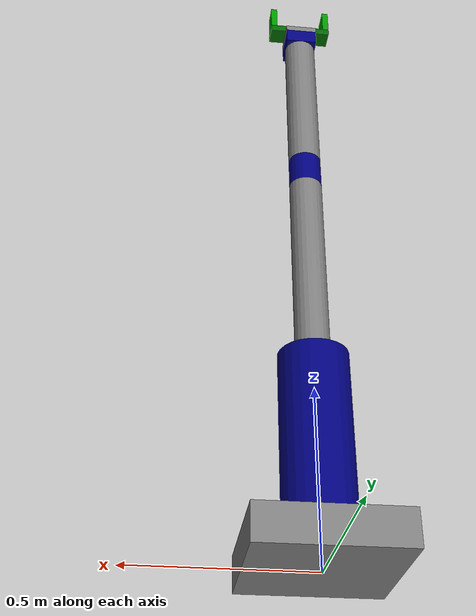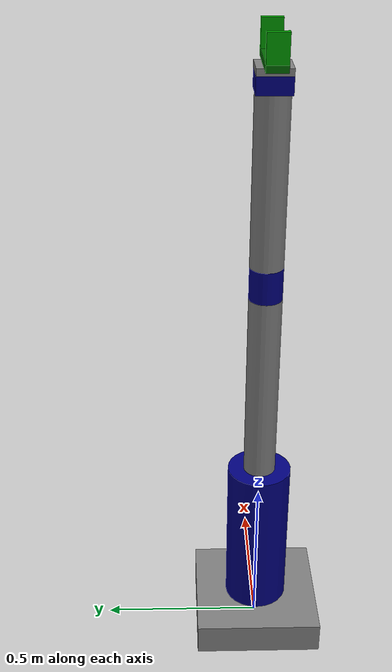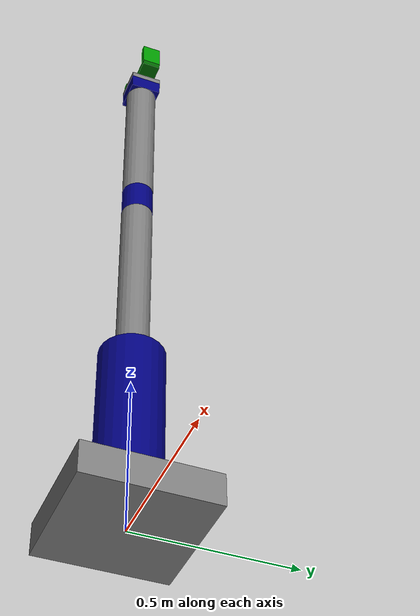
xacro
<?xml version="1.0"?>
<robot xmlns:xacro="http://www.ros.org/wiki/xacro" name="robotic_arm">
    <xacro:arg name="initial_positions_file" default="initial_positions.yaml" />

    <!-- Import robotic_arm urdf file -->
    <xacro:include filename="$(find robotic_arm_description)/urdf/main_robotic_arm.urdf.xacro" />

    <!-- Import control_xacro -->
    <xacro:include filename="robotic_arm.ros2_control.xacro" />

    <xacro:robotic_arm_ros2_control name="FakeSystem" initial_positions_file="$(arg initial_positions_file)"/>

</robot>

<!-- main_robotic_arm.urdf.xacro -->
<robot  name= "robotic_arm" xmlns:xacro="http://www.ros.org/wiki/xacro">
   <xacro:include filename="common_properties.xacro" />
   <xacro:include filename="robotic_arm.xacro" />
   <xacro:include filename="gripper.xacro" />

   <joint name="arm_gripper_joint" type="fixed">
      <parent link="tool_link" />
      <child link="gripper_base_link" />
      <origin xyz="0 0 0" rpy="0 0 0" />
   </joint>

</robot>

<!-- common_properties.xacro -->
<robot xmlns:xacro="http://www.ros.org/wiki/xacro">
    <material name="grey">
        <color rgba="0.5 0.5 0.5 1" />
    </material>

    <material name="blue">
        <color rgba="0 0 0.5 1" />
    </material>

    <material name="dark_green">
        <color rgba="0 0.4 0 1" />
    </material>

    <material name="light_green">
        <color rgba="0 0.6 0 1" />
    </material>
</robot>

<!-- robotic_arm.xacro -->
<robot xmlns:xacro="http://www.ros.org/wiki/xacro">

    <link name = "base_link">
        <visual>
            <geometry>
                <box size="0.4 0.4 0.1" />
            </geometry>
            <origin xyz = "0 0 0.05" rpy = "0 0 0" />
            <material name="grey"/>
        </visual>
        <collision>
            <geometry>
                <box size="0.4 0.4 0.1" />
            </geometry>
            <origin xyz = "0 0 0.05" rpy = "0 0 0" />
        </collision>

    </link>

    <link name = "shoulder_link">
        <visual>
            <geometry>
                <cylinder radius="0.1" length="0.5" />
            </geometry>
            <origin xyz = "0 0 0.25" rpy = "0 0 0" />
            <material name="blue"/>
        </visual>
        <collision>
            <geometry>
                <box size="0.2 0.2 0.5" />
            </geometry>
            <origin xyz = "0 0 0.25" rpy = "0 0 0" />
        </collision>
    </link>

    <link name = "arm_link">
        <visual>
            <geometry>
                <cylinder radius="0.05" length="0.6" />
            </geometry>
            <origin xyz = "0 0 0.3" rpy = "0 0 0" />
            <material name="grey"/>
        </visual>
        <collision>
            <geometry>
                <box size="0.1 0.1 0.6" />
            </geometry>
            <origin xyz = "0 0 0.3" rpy = "0 0 0" />
        </collision>
    </link>

    <link name = "elbow_link" >
        <visual>
            <geometry>
                <cylinder radius="0.05" length="0.1" />
            </geometry>
            <origin xyz = "0 0 0.05" rpy = "0 0 0" />
            <material name="blue"/>
        </visual>
        <collision>
            <geometry>
                <box size="0.1 0.1 0.1" />
            </geometry>
            <origin xyz = "0 0 0.05" rpy = "0 0 0" />
        </collision>
    </link>

    <link name = "forearm_link">
        <visual>
            <geometry>
                <cylinder radius="0.05" length="0.5" />
            </geometry>
            <origin xyz = "0 0 0.25" rpy = "0 0 0" />
            <material name="grey"/>
        </visual>
        <collision>
            <geometry>
                <box size="0.1 0.1 0.5" />
            </geometry>
            <origin xyz = "0 0 0.25" rpy = "0 0 0" />
        </collision>
    </link>

    <link name = "wrist_link">
        <visual>
            <geometry>
                <box size= "0.1 0.1 0.05" />
            </geometry>
            <origin xyz = "0 0 0.025" rpy = "0 0 0" />
            <material name="blue"/>
        </visual>
        <collision>
            <geometry>
                <box size= "0.1 0.1 0.05" />
            </geometry>
            <origin xyz = "0 0 0.025" rpy = "0 0 0" />
        </collision>
    </link>

    <link name = "hand_link">
        <visual>
            <geometry>
                <box size= "0.1 0.1 0.02" />
            </geometry>
            <origin xyz = "0 0 0.01" rpy = "0 0 0" />
            <material name="grey"/>
        </visual>
        <collision>
            <geometry>
                <box size= "0.1 0.1 0.02" />
            </geometry>
            <origin xyz = "0 0 0.01" rpy = "0 0 0" />
        </collision>
    </link>

    <link name = "tool_link">

    </link>

    <joint name = "base_shoulder_joint" type = "revolute">
        <parent link =  "base_link" />
        <child link = "shoulder_link" />
        <origin xyz  = "0 0 0.1" rpy="0 0 0"/>
        <axis xyz = "0 0 1" />
        <limit effort= "1000.0" velocity="1.0" lower= "-3.14" upper= "3.14" />
    </joint>

    <joint name = "shoulder_arm_joint" type = "revolute">
        <parent link =  "shoulder_link" />
        <child link = "arm_link" />
        <origin xyz  = "0 0 0.5" rpy="0 0 0"/>
        <axis xyz = "0 1 0" />
        <limit effort= "1000.0" velocity="1.0" lower= "0" upper= "2.5" />
    </joint>

    <joint name = "arm_elbow_joint" type = "revolute">
        <parent link =  "arm_link" />
        <child link = "elbow_link" />
        <origin xyz  = "0 0 0.6" rpy="0 0 0"/>
        <axis xyz = "0 1 0" />
        <limit effort= "1000.0" velocity="1.0" lower= "0" upper= "2.5" />
    </joint>

    <joint name = "elbow_forearm_joint" type = "revolute">
        <parent link =  "elbow_link" />
        <child link = "forearm_link" />
        <origin xyz  = "0 0 0.1" rpy="0 0 0"/>
        <axis xyz = "0 0 1" />
        <limit effort= "1000.0" velocity="1.0" lower= "-3.14" upper= "3.14" />
    </joint>

    <joint name = "forearm_wrist_joint" type = "revolute">
        <parent link =  "forearm_link" />
        <child link = "wrist_link" />
        <origin xyz  = "0 0 0.5" rpy="0 0 0"/>
        <axis xyz = "0 1 0" />
        <limit effort= "1000.0" velocity="1.0" lower= "-1.57" upper= "1.57" />
    </joint>

    <joint name = "wrist_hand_joint" type = "continuous">
        <parent link =  "wrist_link" />
        <child link = "hand_link" />
        <origin xyz  = "0 0 0.05" rpy="0 0 0"/>
        <axis xyz = "0 0 1" />
    </joint>

    <joint name = "hand_tool_joint" type = "fixed">
        <parent link =  "hand_link" />
        <child link = "tool_link" />
        <origin xyz  = "0 0 0.02" rpy="0 0 0"/>
    </joint>
</robot>

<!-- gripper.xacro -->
<robot xmlns:xacro="http://www.ros.org/wiki/xacro">

    <link name="gripper_base_link">
        <visual>
            <origin xyz="0 0 0.01" rpy="0 0 0" />
            <geometry>
                <box size="0.2 0.06 0.02" />
            </geometry>
            <material name="dark_green"/>
        </visual>
        <collision>
            <origin xyz="0 0 0.01" rpy="0 0 0" />
            <geometry>
                <box size="0.2 0.06 0.02" />
            </geometry>
        </collision>
    </link>

    <link name="gripper_left_finger_link">
        <visual>
            <origin xyz="0 0 0.05" rpy="0 0 0" />
            <geometry>
                <box size="0.02 0.06 0.08" />
            </geometry>
            <material name="light_green"/>
        </visual>
        <collision>
            <origin xyz="0 0 0.05" rpy="0 0 0" />
            <geometry>
                <box size="0.02 0.06 0.08" />
            </geometry>
        </collision>
    </link>

    <link name="gripper_right_finger_link">
        <visual>
            <origin xyz="0 0 0.05" rpy="0 0 0" />
            <geometry>
                <box size="0.02 0.06 0.08" />
            </geometry>
            <material name="light_green"/>
        </visual>
        <collision>
            <origin xyz="0 0 0.05" rpy="0 0 0" />
            <geometry>
                <box size="0.02 0.06 0.08" />
            </geometry>
        </collision>
    </link>

    <joint name="gripper_base_left_joint" type="prismatic">
        <parent link="gripper_base_link" />
        <child link="gripper_left_finger_link" />
        <origin xyz="-0.09 0 0.01" rpy="0 0 0" />
        <axis xyz="1 0 0" />
        <limit lower="0.0" upper="0.08" effort="1000.0" velocity="1.0" />
    </joint>

    <joint name="gripper_base_right_joint" type="prismatic">
        <parent link="gripper_base_link" />
        <child link="gripper_right_finger_link" />
        <origin xyz="0.09 0 0.01" rpy="0 0 ${pi}" />
        <axis xyz="1 0 0" />
        <mimic joint = "gripper_base_left_joint" multiplier= "1.0" />
        <limit lower="0.0" upper="0.08" effort="1000.0" velocity="1.0" />
    </joint>

</robot>
